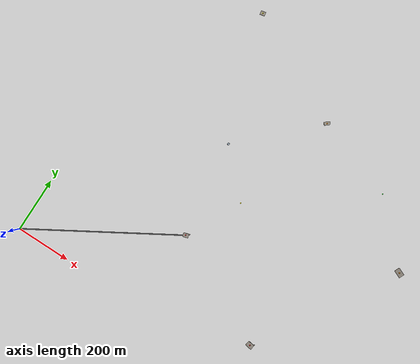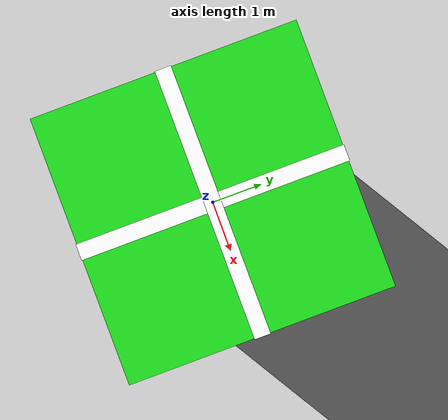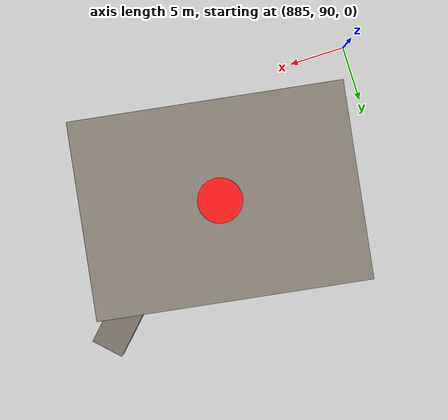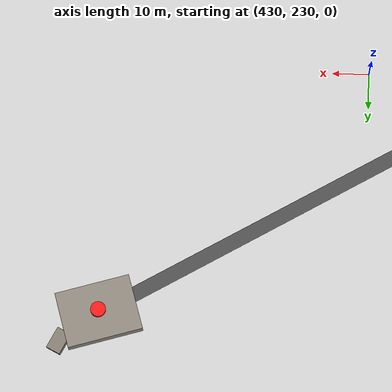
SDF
<?xml version="1.0" ?>
<sdf version="1.7">
  <world name="disaster_zone">

    <!-- PHYSICS                                                           -->
    <physics name="default_physics" type="ode">
      <!-- Step size: 4 ms → 250 Hz simulation rate -->
      <max_step_size>0.004</max_step_size>
      <!-- Run at real-time: 1.0 means 1 sim-second per 1 wall-second -->
      <real_time_factor>1</real_time_factor>
      <!-- Maximum number of contacts between two bodies -->
      <max_contacts>20</max_contacts>
      <ode>
        <solver>
          <!-- Quick solver is more stable for articulated bodies -->
          <type>quick</type>
          <iters>50</iters>
          <sor>1.3</sor>
        </solver>
        <constraints>
          <cfm>0.0</cfm>
          <erp>0.2</erp>
          <contact_max_correcting_vel>100.0</contact_max_correcting_vel>
          <contact_surface_layer>0.001</contact_surface_layer>
        </constraints>
      </ode>
    </physics>

    <!-- SCENE SETTINGS                                                    -->
    <scene>
      <!-- Ambient light: dim bluish overcast sky -->
      <ambient>0.4 0.4 0.5 1</ambient>
      <!-- Sky background colour (grey haze) -->
      <background>0.6 0.6 0.65 1</background>
      <!-- Shadows add realism and help with depth perception -->
      <shadows>true</shadows>
      <grid>false</grid>
    </scene>

    <!-- ATMOSPHERE                                                        -->
    <!-- Simulates post-disaster atmospheric conditions:                   -->
    <!-- light fog from fires and debris dust                              -->
    <atmosphere type="adiabatic">
      <temperature>293.15</temperature>
      <pressure>101325</pressure>             <!-- Sea-level Pa -->
      <temperature_gradient>-0.0065</temperature_gradient>
    </atmosphere>

    <!-- Fog (part of scene visual settings) -->
    <scene>
      <fog>
        <color>0.85 0.85 0.80 1</color>
        <type>linear</type>
        <start>200</start>
        <end>1800</end>
        <density>0.8</density>               <!-- humidity proxy: 0.8 -->
      </fog>
    </scene>

    <!-- WIND                                                              -->
    <!-- Linear velocity: 2 m/s east (+X), 1 m/s north (+Y), 0 vertical  -->
    <wind>
      <linear_velocity>2 1 0</linear_velocity>
    </wind>

    <!-- SUN – directional light (low angle: late afternoon)              -->
    <light name="sun" type="directional">
      <cast_shadows>true</cast_shadows>
      <pose>0 0 1000 0 0.5 0</pose>
      <!-- Low-sun tinted light, slightly warm/orange after disaster smoke -->
      <diffuse>0.9 0.85 0.7 1</diffuse>
      <specular>0.3 0.3 0.25 1</specular>
      <direction>-0.5 0.1 -0.9</direction>
      <attenuation>
        <range>1000</range>
        <constant>0.9</constant>
        <linear>0.01</linear>
        <quadratic>0.001</quadratic>
      </attenuation>
    </light>

    <!-- Ambient fill light to soften harsh shadows -->
    <light name="ambient_fill" type="directional">
      <cast_shadows>false</cast_shadows>
      <pose>0 0 500 0 -0.5 3.14</pose>
      <diffuse>0.3 0.3 0.4 1</diffuse>
      <specular>0.05 0.05 0.05 1</specular>
      <direction>0.5 -0.1 -0.5</direction>
    </light>

    <!-- GROUND PLANE                                                      -->
    <!-- 3000 × 2000 m grey concrete/tarmac surface                       -->
    <model name="ground_plane">
      <static>true</static>
      <link name="link">
        <collision name="collision">
          <geometry>
            <plane>
              <normal>0 0 1</normal>
              <size>3000 2000</size>
            </plane>
          </geometry>
          <surface>
            <friction>
              <ode>
                <mu>100</mu>
                <mu2>50</mu2>
              </ode>
            </friction>
          </surface>
        </collision>
        <visual name="visual">
          <cast_shadows>false</cast_shadows>
          <geometry>
            <plane>
              <normal>0 0 1</normal>
              <size>3000 2000</size>
            </plane>
          </geometry>
          <material>
            <script>
              <uri>file://media/materials/scripts/gazebo.material</uri>
              <name>Gazebo/Grey</name>
            </script>
            <!-- Fallback RGBA: dark grey asphalt -->
            <ambient>0.35 0.35 0.35 1</ambient>
            <diffuse>0.45 0.45 0.45 1</diffuse>
            <specular>0.05 0.05 0.05 1</specular>
          </material>
        </visual>
      </link>
    </model>

    <!-- COLLAPSED BUILDINGS (5 structures)                               -->
    <!-- Represented as flat, low boxes to simulate collapsed multi-storey -->
    <!-- structures.  Rubble piles typically 2-4 m tall.                  -->
    <!-- Positions (x, y, 0):                                              -->
    <!--   Building 0: (500, 300, 0)   Size: 20 × 15 × 3                 -->
    <!--   Building 1: (900, 100, 0)   Size: 25 × 18 × 2.5               -->
    <!--   Building 2: (700, 900, 0)   Size: 22 × 12 × 3.5               -->
    <!--   Building 3: (1200, 600, 0)  Size: 30 × 20 × 2                 -->
    <!--   Building 4: (300, 1100, 0)  Size: 18 × 14 × 4                 -->

    <!-- Building 0 ---------------------------------------------------- -->
    <model name="collapsed_building_0">
      <static>true</static>
      <!-- Centre position: x=500, y=300, z=half-height=1.5 -->
      <pose>500 300 1.5 0 0 0.3</pose>
      <link name="link">
        <collision name="collision">
          <geometry>
            <box><size>20 15 3</size></box>
          </geometry>
        </collision>
        <visual name="visual">
          <geometry>
            <box><size>20 15 3</size></box>
          </geometry>
          <material>
            <ambient>0.50 0.47 0.43 1</ambient>   <!-- concrete grey -->
            <diffuse>0.55 0.52 0.48 1</diffuse>
            <specular>0.05 0.05 0.05 1</specular>
          </material>
        </visual>
      </link>
    </model>

    <!-- Rubble detail for building 0 (smaller offset boxes) -->
    <model name="rubble_0a">
      <static>true</static>
      <pose>510 308 0.75 0.1 0.05 1.1</pose>
      <link name="link">
        <collision name="collision">
          <geometry><box><size>6 4 1.5</size></box></geometry>
        </collision>
        <visual name="visual">
          <geometry><box><size>6 4 1.5</size></box></geometry>
          <material>
            <ambient>0.45 0.42 0.38 1</ambient>
            <diffuse>0.50 0.47 0.43 1</diffuse>
          </material>
        </visual>
      </link>
    </model>

    <!-- Building 1 ---------------------------------------------------- -->
    <model name="collapsed_building_1">
      <static>true</static>
      <pose>900 100 1.25 0 0 -0.15</pose>
      <link name="link">
        <collision name="collision">
          <geometry>
            <box><size>25 18 2.5</size></box>
          </geometry>
        </collision>
        <visual name="visual">
          <geometry>
            <box><size>25 18 2.5</size></box>
          </geometry>
          <material>
            <ambient>0.48 0.45 0.41 1</ambient>
            <diffuse>0.53 0.50 0.46 1</diffuse>
            <specular>0.05 0.05 0.05 1</specular>
          </material>
        </visual>
      </link>
    </model>

    <!-- Rubble detail for building 1 -->
    <model name="rubble_1a">
      <static>true</static>
      <pose>912 108 0.6 0.05 0.12 0.8</pose>
      <link name="link">
        <collision name="collision">
          <geometry><box><size>5 3 1.2</size></box></geometry>
        </collision>
        <visual name="visual">
          <geometry><box><size>5 3 1.2</size></box></geometry>
          <material>
            <ambient>0.43 0.40 0.36 1</ambient>
            <diffuse>0.48 0.45 0.41 1</diffuse>
          </material>
        </visual>
      </link>
    </model>

    <!-- Building 2 ---------------------------------------------------- -->
    <model name="collapsed_building_2">
      <static>true</static>
      <pose>700 900 1.75 0 0 0.7</pose>
      <link name="link">
        <collision name="collision">
          <geometry>
            <box><size>22 12 3.5</size></box>
          </geometry>
        </collision>
        <visual name="visual">
          <geometry>
            <box><size>22 12 3.5</size></box>
          </geometry>
          <material>
            <ambient>0.52 0.49 0.44 1</ambient>
            <diffuse>0.57 0.54 0.49 1</diffuse>
            <specular>0.05 0.05 0.05 1</specular>
          </material>
        </visual>
      </link>
    </model>

    <!-- Building 3 ---------------------------------------------------- -->
    <model name="collapsed_building_3">
      <static>true</static>
      <pose>1200 600 1.0 0 0 -0.4</pose>
      <link name="link">
        <collision name="collision">
          <geometry>
            <box><size>30 20 2</size></box>
          </geometry>
        </collision>
        <visual name="visual">
          <geometry>
            <box><size>30 20 2</size></box>
          </geometry>
          <material>
            <ambient>0.46 0.43 0.39 1</ambient>
            <diffuse>0.51 0.48 0.44 1</diffuse>
            <specular>0.05 0.05 0.05 1</specular>
          </material>
        </visual>
      </link>
    </model>

    <!-- Building 4 ---------------------------------------------------- -->
    <model name="collapsed_building_4">
      <static>true</static>
      <pose>300 1100 2.0 0 0 0.2</pose>
      <link name="link">
        <collision name="collision">
          <geometry>
            <box><size>18 14 4</size></box>
          </geometry>
        </collision>
        <visual name="visual">
          <geometry>
            <box><size>18 14 4</size></box>
          </geometry>
          <material>
            <ambient>0.54 0.51 0.46 1</ambient>
            <diffuse>0.59 0.56 0.51 1</diffuse>
            <specular>0.05 0.05 0.05 1</specular>
          </material>
        </visual>
      </link>
    </model>

    <!-- POINT-OF-INTEREST MARKERS (7 cylinders)                          -->
    <!-- Colour coding by survivor priority:                               -->
    <!--   CRITICAL  → Red    (0: 500,300)   (1: 900,100)                -->
    <!--   HIGH      → Orange (2: 700,900)   (3: 1200,600)               -->
    <!--   MEDIUM    → Yellow (4: 300,1100)  (5: 600,500)                -->
    <!--   LOW       → Green  (6: 1000,800)                               -->
    <!-- Each marker: radius=2 m, height=1 m, placed at ground level      -->
    <!-- The cylinder is offset +3 m on Z from the collapsed building so  -->
    <!-- it is visible from UAV cameras above.                             -->

    <!-- PoI 0 – CRITICAL – Red – near Building 0 (500,300) -->
    <model name="poi_marker_0_critical">
      <static>true</static>
      <pose>500 300 4.5 0 0 0</pose>
      <link name="link">
        <collision name="collision">
          <geometry>
            <cylinder><radius>2</radius><length>1</length></cylinder>
          </geometry>
        </collision>
        <visual name="visual">
          <geometry>
            <cylinder><radius>2</radius><length>1</length></cylinder>
          </geometry>
          <material>
            <!-- Bright red: highest priority survivors trapped -->
            <ambient>0.9 0.05 0.05 1</ambient>
            <diffuse>1.0 0.1 0.1 1</diffuse>
            <specular>0.3 0.1 0.1 1</specular>
            <emissive>0.4 0.0 0.0 1</emissive>
          </material>
        </visual>
      </link>
    </model>

    <!-- PoI 1 – CRITICAL – Red – near Building 1 (900,100) -->
    <model name="poi_marker_1_critical">
      <static>true</static>
      <pose>900 100 3.75 0 0 0</pose>
      <link name="link">
        <collision name="collision">
          <geometry>
            <cylinder><radius>2</radius><length>1</length></cylinder>
          </geometry>
        </collision>
        <visual name="visual">
          <geometry>
            <cylinder><radius>2</radius><length>1</length></cylinder>
          </geometry>
          <material>
            <ambient>0.9 0.05 0.05 1</ambient>
            <diffuse>1.0 0.1 0.1 1</diffuse>
            <specular>0.3 0.1 0.1 1</specular>
            <emissive>0.4 0.0 0.0 1</emissive>
          </material>
        </visual>
      </link>
    </model>

    <!-- PoI 2 – HIGH – Orange – near Building 2 (700,900) -->
    <model name="poi_marker_2_high">
      <static>true</static>
      <pose>700 900 5.25 0 0 0</pose>
      <link name="link">
        <collision name="collision">
          <geometry>
            <cylinder><radius>2</radius><length>1</length></cylinder>
          </geometry>
        </collision>
        <visual name="visual">
          <geometry>
            <cylinder><radius>2</radius><length>1</length></cylinder>
          </geometry>
          <material>
            <!-- Orange: high priority -->
            <ambient>0.9 0.45 0.0 1</ambient>
            <diffuse>1.0 0.55 0.0 1</diffuse>
            <specular>0.3 0.2 0.0 1</specular>
            <emissive>0.3 0.15 0.0 1</emissive>
          </material>
        </visual>
      </link>
    </model>

    <!-- PoI 3 – HIGH – Orange – near Building 3 (1200,600) -->
    <model name="poi_marker_3_high">
      <static>true</static>
      <pose>1200 600 3.5 0 0 0</pose>
      <link name="link">
        <collision name="collision">
          <geometry>
            <cylinder><radius>2</radius><length>1</length></cylinder>
          </geometry>
        </collision>
        <visual name="visual">
          <geometry>
            <cylinder><radius>2</radius><length>1</length></cylinder>
          </geometry>
          <material>
            <ambient>0.9 0.45 0.0 1</ambient>
            <diffuse>1.0 0.55 0.0 1</diffuse>
            <specular>0.3 0.2 0.0 1</specular>
            <emissive>0.3 0.15 0.0 1</emissive>
          </material>
        </visual>
      </link>
    </model>

    <!-- PoI 4 – MEDIUM – Yellow – near Building 4 (300,1100) -->
    <model name="poi_marker_4_medium">
      <static>true</static>
      <pose>300 1100 4.5 0 0 0</pose>
      <link name="link">
        <collision name="collision">
          <geometry>
            <cylinder><radius>2</radius><length>1</length></cylinder>
          </geometry>
        </collision>
        <visual name="visual">
          <geometry>
            <cylinder><radius>2</radius><length>1</length></cylinder>
          </geometry>
          <material>
            <!-- Yellow: medium priority -->
            <ambient>0.9 0.85 0.0 1</ambient>
            <diffuse>1.0 0.95 0.0 1</diffuse>
            <specular>0.3 0.3 0.0 1</specular>
            <emissive>0.25 0.22 0.0 1</emissive>
          </material>
        </visual>
      </link>
    </model>

    <!-- PoI 5 – MEDIUM – Yellow – interior position (600,500) -->
    <model name="poi_marker_5_medium">
      <static>true</static>
      <pose>600 500 0.5 0 0 0</pose>
      <link name="link">
        <collision name="collision">
          <geometry>
            <cylinder><radius>2</radius><length>1</length></cylinder>
          </geometry>
        </collision>
        <visual name="visual">
          <geometry>
            <cylinder><radius>2</radius><length>1</length></cylinder>
          </geometry>
          <material>
            <ambient>0.9 0.85 0.0 1</ambient>
            <diffuse>1.0 0.95 0.0 1</diffuse>
            <specular>0.3 0.3 0.0 1</specular>
            <emissive>0.25 0.22 0.0 1</emissive>
          </material>
        </visual>
      </link>
    </model>

    <!-- PoI 6 – LOW – Green – far position (1000,800) -->
    <model name="poi_marker_6_low">
      <static>true</static>
      <pose>1000 800 0.5 0 0 0</pose>
      <link name="link">
        <collision name="collision">
          <geometry>
            <cylinder><radius>2</radius><length>1</length></cylinder>
          </geometry>
        </collision>
        <visual name="visual">
          <geometry>
            <cylinder><radius>2</radius><length>1</length></cylinder>
          </geometry>
          <material>
            <!-- Green: low priority -->
            <ambient>0.1 0.75 0.1 1</ambient>
            <diffuse>0.15 0.9 0.15 1</diffuse>
            <specular>0.1 0.3 0.1 1</specular>
            <emissive>0.02 0.2 0.02 1</emissive>
          </material>
        </visual>
      </link>
    </model>

    <!-- GCS (GROUND CONTROL STATION) MARKER                              -->
    <!-- Large flat green box at the coordinate origin (launch point)     -->
    <!-- 5 m × 5 m × 1 m, green with UAV landing X pattern on top        -->
    <model name="gcs_marker">
      <static>true</static>
      <pose>0 0 0.5 0 0 0</pose>
      <link name="link">
        <collision name="collision">
          <geometry>
            <box><size>5 5 1</size></box>
          </geometry>
        </collision>
        <visual name="visual">
          <geometry>
            <box><size>5 5 1</size></box>
          </geometry>
          <material>
            <!-- Bright green: command post / safe zone -->
            <ambient>0.05 0.7 0.05 1</ambient>
            <diffuse>0.1 0.85 0.1 1</diffuse>
            <specular>0.1 0.4 0.1 1</specular>
            <emissive>0.0 0.2 0.0 1</emissive>
          </material>
        </visual>
      </link>
    </model>

    <!-- GCS landing pad X arm (horizontal) -->
    <model name="gcs_pad_h">
      <static>true</static>
      <pose>0 0 1.05 0 0 0</pose>
      <link name="link">
        <visual name="visual">
          <geometry><box><size>5 0.3 0.05</size></box></geometry>
          <material>
            <ambient>0.9 0.9 0.9 1</ambient>
            <diffuse>1.0 1.0 1.0 1</diffuse>
          </material>
        </visual>
      </link>
    </model>

    <!-- GCS landing pad X arm (vertical) -->
    <model name="gcs_pad_v">
      <static>true</static>
      <pose>0 0 1.05 0 0 1.5708</pose>
      <link name="link">
        <visual name="visual">
          <geometry><box><size>5 0.3 0.05</size></box></geometry>
          <material>
            <ambient>0.9 0.9 0.9 1</ambient>
            <diffuse>1.0 1.0 1.0 1</diffuse>
          </material>
        </visual>
      </link>
    </model>

    <!-- ROAD / PATH between GCS and Building 0                           -->
    <!-- Thin flat rectangle for visual orientation                       -->
    <model name="road_gcs_to_b0">
      <static>true</static>
      <pose>250 150 0.02 0 0 0.54</pose>
      <link name="link">
        <visual name="visual">
          <geometry><box><size>580 4 0.02</size></box></geometry>
          <material>
            <ambient>0.25 0.25 0.25 1</ambient>
            <diffuse>0.30 0.30 0.30 1</diffuse>
          </material>
        </visual>
      </link>
    </model>

    <!-- ADDITIONAL SCENE PROPS: Water tank (cylindrical obstacle)        -->
    <model name="water_tank_0">
      <static>true</static>
      <pose>450 650 5.0 0 0 0</pose>
      <link name="link">
        <collision name="collision">
          <geometry>
            <cylinder><radius>4</radius><length>10</length></cylinder>
          </geometry>
        </collision>
        <visual name="visual">
          <geometry>
            <cylinder><radius>4</radius><length>10</length></cylinder>
          </geometry>
          <material>
            <ambient>0.5 0.55 0.6 1</ambient>
            <diffuse>0.55 0.60 0.65 1</diffuse>
            <specular>0.4 0.4 0.4 1</specular>
          </material>
        </visual>
      </link>
    </model>

    <!-- PLUGINS                                                           -->

    <!-- Physics / clock plugin (required by PX4 SITL) -->
    <plugin filename="gz-sim-physics-system"
            name="gz::sim::systems::Physics">
    </plugin>

    <!-- Scene broadcaster: streams world state over ign-transport -->
    <plugin filename="gz-sim-scene-broadcaster-system"
            name="gz::sim::systems::SceneBroadcaster">
    </plugin>

    <!-- User commands: allows Gazebo GUI to move models, apply forces, etc. -->
    <plugin filename="gz-sim-user-commands-system"
            name="gz::sim::systems::UserCommands">
    </plugin>

    <!-- IMU sensor system (needed for PX4 IMU plugin) -->
    <plugin filename="gz-sim-imu-system"
            name="gz::sim::systems::Imu">
    </plugin>

    <!-- Air pressure (barometer for PX4) -->
    <plugin filename="gz-sim-air-pressure-system"
            name="gz::sim::systems::AirPressure">
    </plugin>

    <!-- Magnetometer -->
    <plugin filename="gz-sim-magnetometer-system"
            name="gz::sim::systems::Magnetometer">
    </plugin>

    <!-- GPS / NAVSAT system -->
    <plugin filename="gz-sim-navsat-system"
            name="gz::sim::systems::NavSat">
    </plugin>

    <plugin filename="gz-sim-wind-effects-system"
            name="gz::sim::systems::WindEffects">
      <force_approximation_scaling_factor>1</force_approximation_scaling_factor>
      <horizontal>
        <magnitude>
          <time_for_rise>10</time_for_rise>
          <sin>
            <amplitude_percent>0.05</amplitude_percent>
            <period>60</period>
          </sin>
          <noise type="gaussian">
            <mean>0</mean>
            <stddev>0.0002</stddev>
          </noise>
        </magnitude>
        <direction>
          <time_for_rise>30</time_for_rise>
          <sin>
            <amplitude>5</amplitude>
            <period>20</period>
          </sin>
          <noise type="gaussian">
            <mean>0</mean>
            <stddev>0.005</stddev>
          </noise>
        </direction>
      </horizontal>
      <vertical>
        <noise type="gaussian">
          <mean>0</mean>
          <stddev>0.001</stddev>
        </noise>
      </vertical>
    </plugin>

  </world>
</sdf>
